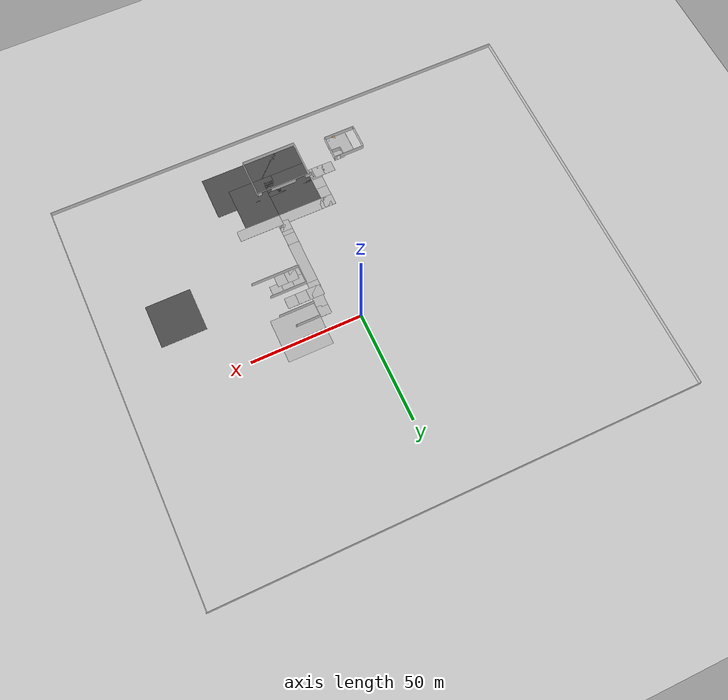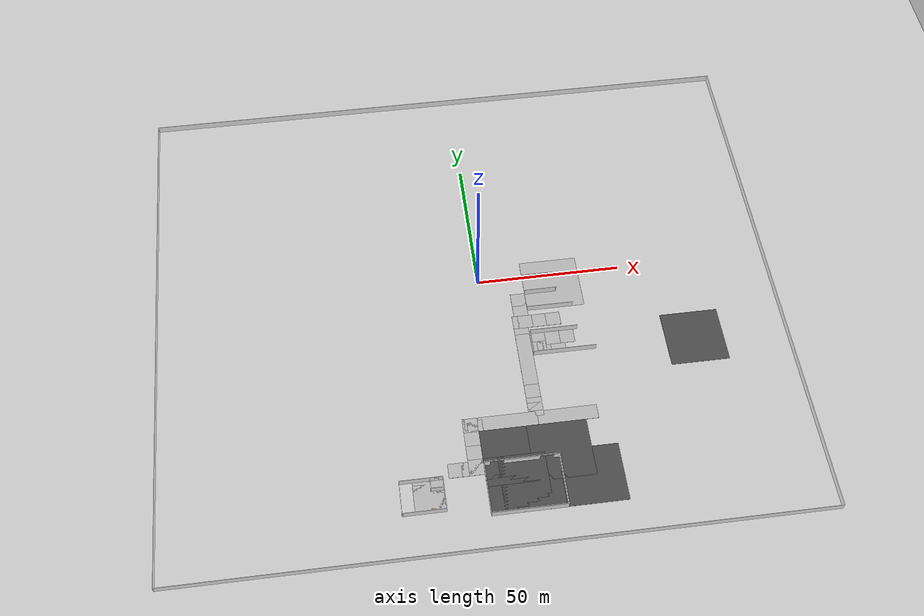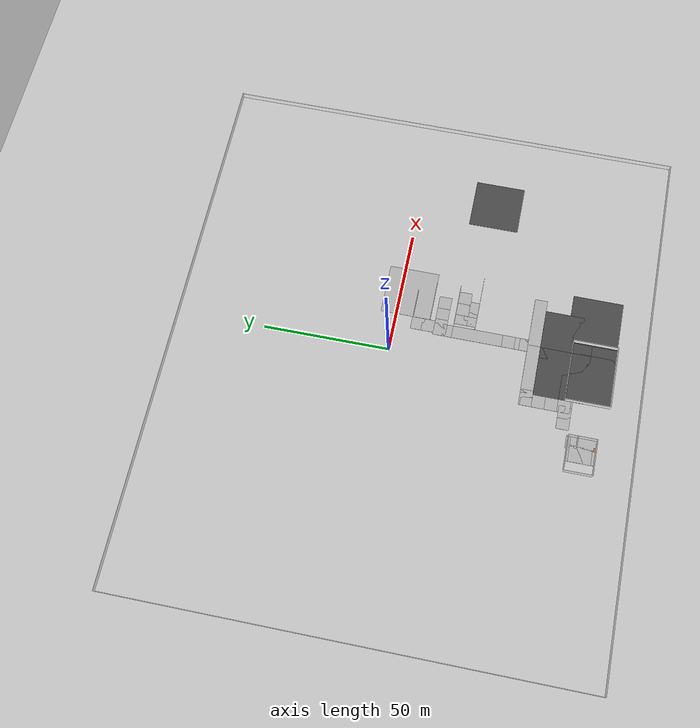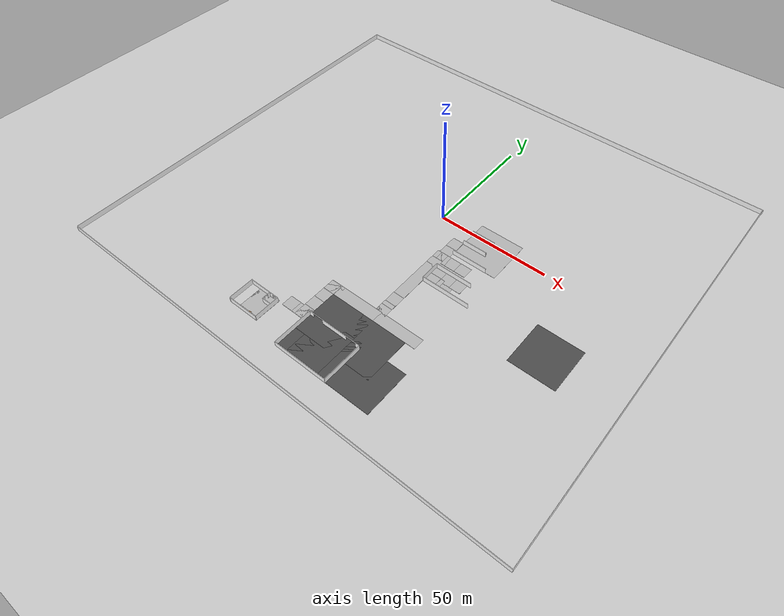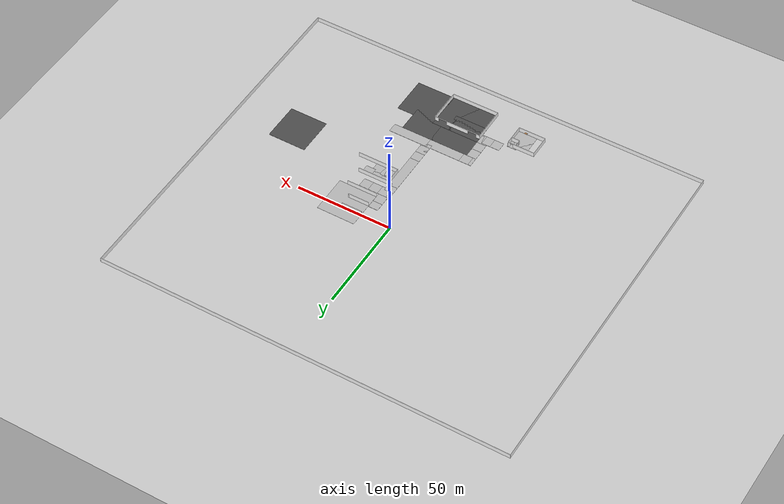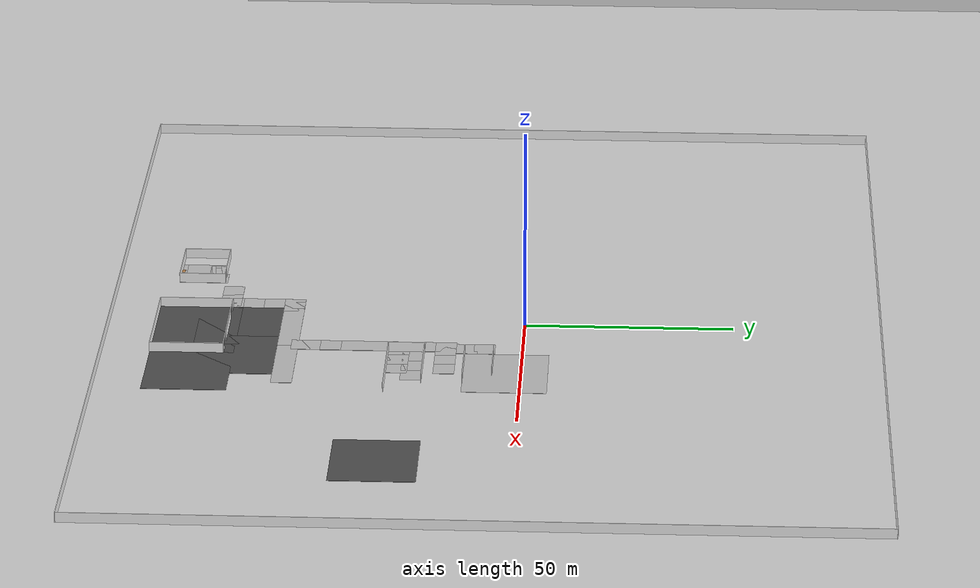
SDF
<sdf version="1.6">
 <world name="default">
  <model name="borders_0">
   <pose>-4.565 -7.31339 0 0 -0 0</pose>
   <link name="Wall_60">
    <collision name="Wall_60_Collision">
     <geometry><box><size>185.25 0.15 2.5</size></box></geometry>
     <pose>0 0 1.25 0 -0 0</pose>
    </collision>
    <visual name="Wall_60_Visual">
     <pose>0 0 1.25 0 -0 0</pose>
     <geometry><box><size>185.25 0.15 2.5</size></box></geometry>
     <material>
      <script>
       <uri>model://office_env/materials/scripts</uri>
       <uri>model://office_env/materials/textures</uri>
       <name>wall</name>
      </script>
      <ambient>1 1 1 1</ambient>
     </material>
    </visual>
    <pose>107.175 0 0 0 0 -1.5708</pose>
   </link>
   <link name="Wall_61">
    <collision name="Wall_61_Collision">
     <geometry><box><size>214.75 0.15 2.5</size></box></geometry>
     <pose>0 0 1.25 0 -0 0</pose>
    </collision>
    <visual name="Wall_61_Visual">
     <pose>0 0 1.25 0 -0 0</pose>
     <geometry><box><size>214.75 0.15 2.5</size></box></geometry>
     <material>
      <script>
       <uri>model://office_env/materials/scripts</uri>
       <uri>model://office_env/materials/textures</uri>
       <name>wall</name>
      </script>
      <ambient>1 1 1 1</ambient>
     </material>
    </visual>
    <pose>-0.124995 -92.55 0 0 -0 3.14159</pose>
   </link>
   <link name="Wall_62">
    <collision name="Wall_62_Collision">
     <geometry><box><size>185.25 0.15 2.5</size></box></geometry>
     <pose>0 0 1.25 0 -0 0</pose>
    </collision>
    <visual name="Wall_62_Visual">
     <pose>0 0 1.25 0 -0 0</pose>
     <geometry><box><size>185.25 0.15 2.5</size></box></geometry>
     <material>
      <script>
       <uri>model://office_env/materials/scripts</uri>
       <uri>model://office_env/materials/textures</uri>
       <name>wall</name>
      </script>
      <ambient>1 1 1 1</ambient>
     </material>
    </visual>
    <pose>-107.425 0 0 0 -0 1.5708</pose>
   </link>
   <link name="Wall_64">
    <collision name="Wall_64_Collision">
     <geometry><box><size>215 0.15 2.5</size></box></geometry>
     <pose>0 0 1.25 0 -0 0</pose>
    </collision>
    <visual name="Wall_64_Visual">
     <pose>0 0 1.25 0 -0 0</pose>
     <geometry><box><size>215 0.15 2.5</size></box></geometry>
     <material>
      <script>
       <uri>model://office_env/materials/scripts</uri>
       <uri>model://office_env/materials/textures</uri>
       <name>wall</name>
      </script>
      <ambient>1 1 1 1</ambient>
     </material>
    </visual>
    <pose>5e-06 92.55 0 0 -0 0</pose>
   </link>
   <static>1</static>
  </model>
  <model name="mainoffice">
   <pose>42.7555 15.4488 0 0 -0 0</pose>
   <link name="Wall_30">
    <collision name="Wall_30_Collision">
     <geometry><box><size>21.5 0.15 2.5</size></box></geometry>
     <pose>0 0 1.25 0 -0 0</pose>
    </collision>
    <visual name="Wall_30_Visual">
     <pose>0 0 1.25 0 -0 0</pose>
     <geometry><box><size>21.5 0.15 2.5</size></box></geometry>
     <material>
      <script>
       <uri>model://office_env/materials/scripts</uri>
       <uri>model://office_env/materials/textures</uri>
       <name>wall</name>
      </script>
      <ambient>1 1 1 1</ambient>
     </material>
    </visual>
    <pose>-17.1741 -47.325 0 0 -0 3.14159</pose>
   </link>
   <link name="Wall_31">
    <collision name="Wall_31_Collision">
     <geometry><box><size>8.75 0.15 2.5</size></box></geometry>
     <pose>0 0 1.25 0 -0 0</pose>
    </collision>
    <visual name="Wall_31_Visual">
     <pose>0 0 1.25 0 -0 0</pose>
     <geometry><box><size>8.75 0.15 2.5</size></box></geometry>
     <material>
      <script>
       <uri>model://office_env/materials/scripts</uri>
       <uri>model://office_env/materials/textures</uri>
       <name>wall</name>
      </script>
      <ambient>1 1 1 1</ambient>
     </material>
    </visual>
    <pose>-27.8491 -43.025 0 0 -0 1.5708</pose>
   </link>
   <link name="Wall_32">
    <collision name="Wall_32_Collision">
     <geometry><box><size>16.5 0.15 2.5</size></box></geometry>
     <pose>0 0 1.25 0 -0 0</pose>
    </collision>
    <visual name="Wall_32_Visual">
     <pose>0 0 1.25 0 -0 0</pose>
     <geometry><box><size>16.5 0.15 2.5</size></box></geometry>
     <material>
      <script>
       <uri>model://office_env/materials/scripts</uri>
       <uri>model://office_env/materials/textures</uri>
       <name>wall</name>
      </script>
      <ambient>1 1 1 1</ambient>
     </material>
    </visual>
    <pose>-19.6741 -38.725 0 0 -0 0</pose>
   </link>
   <link name="Wall_34">
    <collision name="Wall_34_Collision">
     <geometry><box><size>15.75 0.15 2.5</size></box></geometry>
     <pose>0 0 1.25 0 -0 0</pose>
    </collision>
    <visual name="Wall_34_Visual">
     <pose>0 0 1.25 0 -0 0</pose>
     <geometry><box><size>15.75 0.15 2.5</size></box></geometry>
     <material>
      <script>
       <uri>model://office_env/materials/scripts</uri>
       <uri>model://office_env/materials/textures</uri>
       <name>wall</name>
      </script>
      <ambient>1 1 1 1</ambient>
     </material>
    </visual>
    <pose>-19.2991 -29.125 0 0 -0 3.14159</pose>
   </link>
   <link name="Wall_61">
    <collision name="Wall_61_Collision">
     <geometry><box><size>0.5 0.15 2.5</size></box></geometry>
     <pose>0 0 1.25 0 -0 0</pose>
    </collision>
    <visual name="Wall_61_Visual">
     <pose>0 0 1.25 0 -0 0</pose>
     <geometry><box><size>0.5 0.15 2.5</size></box></geometry>
     <material>
      <script>
       <uri>model://office_env/materials/scripts</uri>
       <uri>model://office_env/materials/textures</uri>
       <name>wall</name>
      </script>
      <ambient>1 1 1 1</ambient>
     </material>
    </visual>
    <pose>-16.2741 -22.275 0 0 -0 3.14159</pose>
   </link>
   <link name="Wall_65">
    <collision name="Wall_65_Collision">
     <geometry><box><size>10.75 0.15 2.5</size></box></geometry>
     <pose>0 0 1.25 0 -0 0</pose>
    </collision>
    <visual name="Wall_65_Visual">
     <pose>0 0 1.25 0 -0 0</pose>
     <geometry><box><size>10.75 0.15 2.5</size></box></geometry>
     <material>
      <script>
       <uri>model://office_env/materials/scripts</uri>
       <uri>model://office_env/materials/textures</uri>
       <name>wall</name>
      </script>
      <ambient>1 1 1 1</ambient>
     </material>
    </visual>
    <pose>-21.7491 -22.275 0 0 -0 3.14159</pose>
   </link>
   <link name="Wall_69">
    <collision name="Wall_69_Collision">
     <geometry><box><size>10.75 0.15 2.5</size></box></geometry>
     <pose>0 0 1.25 0 -0 0</pose>
    </collision>
    <visual name="Wall_69_Visual">
     <pose>0 0 1.25 0 -0 0</pose>
     <geometry><box><size>10.75 0.15 2.5</size></box></geometry>
     <material>
      <script>
       <uri>model://office_env/materials/scripts</uri>
       <uri>model://office_env/materials/textures</uri>
       <name>wall</name>
      </script>
      <ambient>1 1 1 1</ambient>
     </material>
    </visual>
    <pose>-21.8396 -15.8176 0 0 -0 3.14159</pose>
   </link>
   <static>1</static>
  </model>
  <model name="office3_0">
   <pose>-28.0882 -79.6403 0 0 -0 0</pose>
   <link name="Wall_226">
    <collision name="Wall_226_Collision">
     <geometry><box><size>11.25 0.15 2.5</size></box></geometry>
     <pose>0 0 1.25 0 -0 0</pose>
    </collision>
    <visual name="Wall_226_Visual">
     <pose>0 0 1.25 0 -0 0</pose>
     <geometry><box><size>11.25 0.15 2.5</size></box></geometry>
     <material>
      <script>
       <uri>model://office_env/materials/scripts</uri>
       <uri>model://office_env/materials/textures</uri>
       <name>wall</name>
      </script>
      <ambient>1 1 1 1</ambient>
     </material>
    </visual>
    <pose>-7.05 0 0 0 -0 1.5708</pose>
   </link>
   <link name="Wall_228">
    <pose>0 5.55 0 0 -0 0</pose>
    <visual name="Wall_228_Visual_0">
     <pose>-1.41788 0 1.25 0 -0 0</pose>
     <geometry><box><size>11.4142 0.15 2.5</size></box></geometry>
     <material>
      <script>
       <uri>model://office_env/materials/scripts</uri>
       <uri>model://office_env/materials/textures</uri>
       <name>wall</name>
      </script>
      <ambient>1 1 1 1</ambient>
     </material>
    </visual>
    <collision name="Wall_228_Collision_0">
     <geometry><box><size>11.4142 0.15 2.5</size></box></geometry>
     <pose>-1.41788 0 1.25 0 -0 0</pose>
    </collision>
    <visual name="Wall_228_Visual_1">
     <pose>6.45712 0 1.25 0 -0 0</pose>
     <geometry><box><size>1.33575 0.15 2.5</size></box></geometry>
     <material>
      <script>
       <uri>model://office_env/materials/scripts</uri>
       <uri>model://office_env/materials/textures</uri>
       <name>wall</name>
      </script>
      <ambient>1 1 1 1</ambient>
     </material>
    </visual>
    <collision name="Wall_228_Collision_1">
     <geometry><box><size>1.33575 0.15 2.5</size></box></geometry>
     <pose>6.45712 0 1.25 0 -0 0</pose>
    </collision>
    <visual name="Wall_228_Visual_2">
     <pose>5.03925 0 2.25 0 -0 0</pose>
     <geometry><box><size>1.5 0.15 0.5</size></box></geometry>
     <material>
      <script>
       <uri>model://office_env/materials/scripts</uri>
       <uri>model://office_env/materials/textures</uri>
       <name>wall</name>
      </script>
      <ambient>1 1 1 1</ambient>
     </material>
    </visual>
    <collision name="Wall_228_Collision_2">
     <geometry><box><size>1.5 0.15 0.5</size></box></geometry>
     <pose>5.03925 0 2.25 0 -0 0</pose>
    </collision>
   </link>
   <link name="Wall_229">
    <collision name="Wall_229_Collision">
     <geometry><box><size>11.25 0.15 2.5</size></box></geometry>
     <pose>0 0 1.25 0 -0 0</pose>
    </collision>
    <visual name="Wall_229_Visual">
     <pose>0 0 1.25 0 -0 0</pose>
     <geometry><box><size>11.25 0.15 2.5</size></box></geometry>
     <material>
      <script>
       <uri>model://office_env/materials/scripts</uri>
       <uri>model://office_env/materials/textures</uri>
       <name>wall</name>
      </script>
      <ambient>1 1 1 1</ambient>
     </material>
    </visual>
    <pose>7.05 0 0 0 0 -1.5708</pose>
   </link>
   <link name="Wall_230">
    <collision name="Wall_230_Collision">
     <geometry><box><size>14 0.15 2.5</size></box></geometry>
     <pose>0 0 1.25 0 -0 0</pose>
    </collision>
    <visual name="Wall_230_Visual">
     <pose>0 0 1.25 0 -0 0</pose>
     <geometry><box><size>14 0.15 2.5</size></box></geometry>
     <material>
      <script>
       <uri>model://office_env/materials/scripts</uri>
       <uri>model://office_env/materials/textures</uri>
       <name>wall</name>
      </script>
      <ambient>1 1 1 1</ambient>
     </material>
    </visual>
    <pose>0.125 -5.55 0 0 -0 3.14159</pose>
   </link>
   <link name="Wall_231">
    <collision name="Wall_231_Collision">
     <geometry><box><size>0.4 0.15 2.5</size></box></geometry>
     <pose>0 0 1.25 0 -0 0</pose>
    </collision>
    <visual name="Wall_231_Visual">
     <pose>0 0 1.25 0 -0 0</pose>
     <geometry><box><size>0.4 0.15 2.5</size></box></geometry>
     <material>
      <script>
       <uri>model://office_env/materials/scripts</uri>
       <uri>model://office_env/materials/textures</uri>
       <name>wall</name>
      </script>
      <ambient>1 1 1 1</ambient>
     </material>
    </visual>
    <pose>-6.925 -5.55 0 0 -0 3.14159</pose>
   </link>
   <link name="Wall_235">
    <pose>2.82004 3.69571 0 0 0 -1.5708</pose>
    <visual name="Wall_235_Visual_0">
     <pose>-1.26863 0 1.25 0 -0 0</pose>
     <geometry><box><size>1.21274 0.15 2.5</size></box></geometry>
     <material>
      <script>
       <uri>model://office_env/materials/scripts</uri>
       <uri>model://office_env/materials/textures</uri>
       <name>wall</name>
      </script>
      <ambient>1 1 1 1</ambient>
     </material>
    </visual>
    <collision name="Wall_235_Collision_0">
     <geometry><box><size>1.21274 0.15 2.5</size></box></geometry>
     <pose>-1.26863 0 1.25 0 -0 0</pose>
    </collision>
    <visual name="Wall_235_Visual_1">
     <pose>1.35637 0 1.25 0 -0 0</pose>
     <geometry><box><size>1.03726 0.15 2.5</size></box></geometry>
     <material>
      <script>
       <uri>model://office_env/materials/scripts</uri>
       <uri>model://office_env/materials/textures</uri>
       <name>wall</name>
      </script>
      <ambient>1 1 1 1</ambient>
     </material>
    </visual>
    <collision name="Wall_235_Collision_1">
     <geometry><box><size>1.03726 0.15 2.5</size></box></geometry>
     <pose>1.35637 0 1.25 0 -0 0</pose>
    </collision>
    <visual name="Wall_235_Visual_2">
     <pose>0.087742 0 2.25 0 -0 0</pose>
     <geometry><box><size>1.5 0.15 0.5</size></box></geometry>
     <material>
      <script>
       <uri>model://office_env/materials/scripts</uri>
       <uri>model://office_env/materials/textures</uri>
       <name>wall</name>
      </script>
      <ambient>1 1 1 1</ambient>
     </material>
    </visual>
    <collision name="Wall_235_Collision_2">
     <geometry><box><size>1.5 0.15 0.5</size></box></geometry>
     <pose>0.087742 0 2.25 0 -0 0</pose>
    </collision>
   </link>
   <link name="Wall_236">
    <collision name="Wall_236_Collision">
     <geometry><box><size>4.25 0.15 2.5</size></box></geometry>
     <pose>0 0 1.25 0 -0 0</pose>
    </collision>
    <visual name="Wall_236_Visual">
     <pose>0 0 1.25 0 -0 0</pose>
     <geometry><box><size>4.25 0.15 2.5</size></box></geometry>
     <material>
      <script>
       <uri>model://office_env/materials/scripts</uri>
       <uri>model://office_env/materials/textures</uri>
       <name>wall</name>
      </script>
      <ambient>1 1 1 1</ambient>
     </material>
    </visual>
    <pose>4.87004 1.89571 0 0 -0 0</pose>
   </link>
   <static>1</static>
  </model>
  <model name="park_1">
   <pose>5 -79.6403 0 0 -0 0</pose>
   <link name="Wall_10">
    <collision name="Wall_10_Collision">
     <geometry><box><size>24.75 0.15 2.5</size></box></geometry>
     <pose>0 0 1.25 0 -0 0</pose>
    </collision>
    <visual name="Wall_10_Visual">
     <pose>0 0 1.25 0 -0 0</pose>
     <geometry><box><size>24.75 0.15 2.5</size></box></geometry>
     <material>
      <script>
       <uri>model://office_env/materials/scripts</uri>
       <uri>model://office_env/materials/textures</uri>
       <name>wall</name>
      </script>
      <ambient>1 1 1 1</ambient>
     </material>
    </visual>
    <pose>0 -8.8 0 0 -0 0</pose>
   </link>
   <link name="Wall_11">
    <collision name="Wall_11_Collision">
     <geometry><box><size>17.75 0.15 2.5</size></box></geometry>
     <pose>0 0 1.25 0 -0 0</pose>
    </collision>
    <visual name="Wall_11_Visual">
     <pose>0 0 1.25 0 -0 0</pose>
     <geometry><box><size>17.75 0.15 2.5</size></box></geometry>
     <material>
      <script>
       <uri>model://office_env/materials/scripts</uri>
       <uri>model://office_env/materials/textures</uri>
       <name>wall</name>
      </script>
      <ambient>1 1 1 1</ambient>
     </material>
    </visual>
    <pose>12.3 0 0 0 -0 1.5708</pose>
   </link>
   <link name="Wall_12">
    <pose>0 8.8 0 0 -0 3.14159</pose>
    <visual name="Wall_12_Visual_0">
     <pose>-11.3671 0 1.25 0 -0 0</pose>
     <geometry><box><size>2.0158 0.15 2.5</size></box></geometry>
     <material>
      <script>
       <uri>model://office_env/materials/scripts</uri>
       <uri>model://office_env/materials/textures</uri>
       <name>wall</name>
      </script>
      <ambient>1 1 1 1</ambient>
     </material>
    </visual>
    <collision name="Wall_12_Collision_0">
     <geometry><box><size>2.0158 0.15 2.5</size></box></geometry>
     <pose>-11.3671 0 1.25 0 -0 0</pose>
    </collision>
    <visual name="Wall_12_Visual_1">
     <pose>-0.005473 0 1.25 0 -0 0</pose>
     <geometry><box><size>11.7075 0.15 2.5</size></box></geometry>
     <material>
      <script>
       <uri>model://office_env/materials/scripts</uri>
       <uri>model://office_env/materials/textures</uri>
       <name>wall</name>
      </script>
      <ambient>1 1 1 1</ambient>
     </material>
    </visual>
    <collision name="Wall_12_Collision_1">
     <geometry><box><size>11.7075 0.15 2.5</size></box></geometry>
     <pose>-0.005473 0 1.25 0 -0 0</pose>
    </collision>
    <visual name="Wall_12_Visual_2">
     <pose>11.3616 0 1.25 0 -0 0</pose>
     <geometry><box><size>2.02674 0.15 2.5</size></box></geometry>
     <material>
      <script>
       <uri>model://office_env/materials/scripts</uri>
       <uri>model://office_env/materials/textures</uri>
       <name>wall</name>
      </script>
      <ambient>1 1 1 1</ambient>
     </material>
    </visual>
    <collision name="Wall_12_Collision_2">
     <geometry><box><size>2.02674 0.15 2.5</size></box></geometry>
     <pose>11.3616 0 1.25 0 -0 0</pose>
    </collision>
    <visual name="Wall_12_Visual_3">
     <pose>-8.1092 0 2.3 0 -0 0</pose>
     <geometry><box><size>4.5 0.15 0.4</size></box></geometry>
     <material>
      <script>
       <uri>model://office_env/materials/scripts</uri>
       <uri>model://office_env/materials/textures</uri>
       <name>wall</name>
      </script>
      <ambient>1 1 1 1</ambient>
     </material>
    </visual>
    <collision name="Wall_12_Collision_3">
     <geometry><box><size>4.5 0.15 0.4</size></box></geometry>
     <pose>-8.1092 0 2.3 0 -0 0</pose>
    </collision>
    <visual name="Wall_12_Visual_4">
     <pose>8.09826 0 2.3 0 -0 0</pose>
     <geometry><box><size>4.5 0.15 0.4</size></box></geometry>
     <material>
      <script>
       <uri>model://office_env/materials/scripts</uri>
       <uri>model://office_env/materials/textures</uri>
       <name>wall</name>
      </script>
      <ambient>1 1 1 1</ambient>
     </material>
    </visual>
    <collision name="Wall_12_Collision_4">
     <geometry><box><size>4.5 0.15 0.4</size></box></geometry>
     <pose>8.09826 0 2.3 0 -0 0</pose>
    </collision>
   </link>
   <link name="Wall_4">
    <collision name="Wall_4_Collision">
     <geometry><box><size>17.75 0.15 2.5</size></box></geometry>
     <pose>0 0 1.25 0 -0 0</pose>
    </collision>
    <visual name="Wall_4_Visual">
     <pose>0 0 1.25 0 -0 0</pose>
     <geometry><box><size>17.75 0.15 2.5</size></box></geometry>
     <material>
      <script>
       <uri>model://office_env/materials/scripts</uri>
       <uri>model://office_env/materials/textures</uri>
       <name>wall</name>
      </script>
      <ambient>1 1 1 1</ambient>
     </material>
    </visual>
    <pose>-12.3 0 0 0 0 -1.5708</pose>
   </link>
   <static>1</static>
  </model>
  <model name="asphalt_plane">
   <static>1</static>
   <link name="link">
    <collision name="collision"><geometry><box><size>20 20 0.1</size></box></geometry></collision>
    <visual name="visual">
     <cast_shadows>0</cast_shadows>
     <geometry><box><size>20 20 0.1</size></box></geometry>
     <material>
      <script>
       <uri>model://asphalt_plane/materials/scripts</uri>
       <uri>model://asphalt_plane/materials/textures</uri>
       <name>vrc/asphalt</name>
      </script>
     </material>
    </visual>
   </link>
   <pose>70.7475 -31.5972 0 0 -0 0</pose>
  </model>
  <model name="asphalt_plane_21">
   <static>1</static>
   <link name="link">
    <collision name="collision"><geometry><box><size>20 20 0.1</size></box></geometry></collision>
    <visual name="visual">
     <cast_shadows>0</cast_shadows>
     <geometry><box><size>20 20 0.1</size></box></geometry>
     <material>
      <script>
       <uri>model://asphalt_plane/materials/scripts</uri>
       <uri>model://asphalt_plane/materials/textures</uri>
       <name>vrc/asphalt</name>
      </script>
     </material>
    </visual>
   </link>
   <pose>7.25861 -78.4975 0 0 -0 0</pose>
  </model>
  <model name="asphalt_plane_22">
   <static>1</static>
   <link name="link">
    <collision name="collision"><geometry><box><size>20 20 0.1</size></box></geometry></collision>
    <visual name="visual">
     <cast_shadows>0</cast_shadows>
     <geometry><box><size>20 20 0.1</size></box></geometry>
     <material>
      <script>
       <uri>model://asphalt_plane/materials/scripts</uri>
       <uri>model://asphalt_plane/materials/textures</uri>
       <name>vrc/asphalt</name>
      </script>
     </material>
    </visual>
   </link>
   <pose>2.73538 -78.4496 0 0 -0 0</pose>
  </model>
  <model name="asphalt_plane_23">
   <static>1</static>
   <link name="link">
    <collision name="collision"><geometry><box><size>20 20 0.1</size></box></geometry></collision>
    <visual name="visual">
     <cast_shadows>0</cast_shadows>
     <geometry><box><size>20 20 0.1</size></box></geometry>
     <material>
      <script>
       <uri>model://asphalt_plane/materials/scripts</uri>
       <uri>model://asphalt_plane/materials/textures</uri>
       <name>vrc/asphalt</name>
      </script>
     </material>
    </visual>
   </link>
   <pose>2.60492 -68.4597 0 0 -0 0</pose>
  </model>
  <model name="asphalt_plane_24">
   <static>1</static>
   <link name="link">
    <collision name="collision"><geometry><box><size>20 20 0.1</size></box></geometry></collision>
    <visual name="visual">
     <cast_shadows>0</cast_shadows>
     <geometry><box><size>20 20 0.1</size></box></geometry>
     <material>
      <script>
       <uri>model://asphalt_plane/materials/scripts</uri>
       <uri>model://asphalt_plane/materials/textures</uri>
       <name>vrc/asphalt</name>
      </script>
     </material>
    </visual>
   </link>
   <pose>18.2239 -68.4616 0 0 -0 0</pose>
  </model>
  <model name="asphalt_plane_27">
   <static>1</static>
   <link name="link">
    <collision name="collision"><geometry><box><size>20 20 0.1</size></box></geometry></collision>
    <visual name="visual">
     <cast_shadows>0</cast_shadows>
     <geometry><box><size>20 20 0.1</size></box></geometry>
     <material>
      <script>
       <uri>model://asphalt_plane/materials/scripts</uri>
       <uri>model://asphalt_plane/materials/textures</uri>
       <name>vrc/asphalt</name>
      </script>
     </material>
    </visual>
   </link>
   <pose>26.9397 -78.4242 0 0 -0 0</pose>
  </model>
  <model name="table_6">
   <static>0</static>
   <link name="link">
    <collision name="surface">
     <pose>0 0 1 0 -0 0</pose>
     <geometry><box><size>1.5 0.8 0.03</size></box></geometry>
     <surface><friction><ode><mu>0.6</mu><mu2>0.6</mu2></ode></friction></surface>
    </collision>
    <visual name="visual1">
     <pose>0 0 1 0 -0 0</pose>
     <geometry><box><size>1.4 0.8 0.04</size></box></geometry>
     <material>
      <script><uri>file://media/materials/scripts/gazebo.material</uri><name>Gazebo/Wood</name></script>
     </material>
    </visual>
    <collision name="front_left_leg">
     <pose>0.68 0.38 0.5 0 -0 0</pose>
     <geometry><cylinder><radius>0.02</radius><length>1</length></cylinder></geometry>
    </collision>
    <visual name="front_left_leg">
     <pose>0.68 0.38 0.5 0 -0 0</pose>
     <geometry><cylinder><radius>0.02</radius><length>1</length></cylinder></geometry>
     <material>
      <script>
       <uri>model://office_env/materials/scripts</uri>
       <uri>model://office_env/materials/textures</uri>
       <name>wall</name>
      </script>
     </material>
    </visual>
    <collision name="front_right_leg">
     <pose>0.68 -0.38 0.5 0 -0 0</pose>
     <geometry><cylinder><radius>0.02</radius><length>1</length></cylinder></geometry>
    </collision>
    <visual name="front_right_leg">
     <pose>0.68 -0.38 0.5 0 -0 0</pose>
     <geometry><cylinder><radius>0.02</radius><length>1</length></cylinder></geometry>
     <material>
      <script>
       <uri>model://office_env/materials/scripts</uri>
       <uri>model://office_env/materials/textures</uri>
       <name>wall</name>
      </script>
     </material>
    </visual>
    <collision name="back_right_leg">
     <pose>-0.68 -0.38 0.5 0 -0 0</pose>
     <geometry><cylinder><radius>0.02</radius><length>1</length></cylinder></geometry>
    </collision>
    <visual name="back_right_leg">
     <pose>-0.68 -0.38 0.5 0 -0 0</pose>
     <geometry><cylinder><radius>0.02</radius><length>1</length></cylinder></geometry>
     <material>
      <script>
       <uri>model://office_env/materials/scripts</uri>
       <uri>model://office_env/materials/textures</uri>
       <name>wall</name>
      </script>
     </material>
    </visual>
    <collision name="back_left_leg">
     <pose>-0.68 0.38 0.5 0 -0 0</pose>
     <geometry><cylinder><radius>0.02</radius><length>1</length></cylinder></geometry>
    </collision>
    <visual name="back_left_leg">
     <pose>-0.68 0.38 0.5 0 -0 0</pose>
     <geometry><cylinder><radius>0.02</radius><length>1</length></cylinder></geometry>
     <material>
      <script>
       <uri>model://office_env/materials/scripts</uri>
       <uri>model://office_env/materials/textures</uri>
       <name>wall</name>
      </script>
     </material>
    </visual>
    <inertial>
     <inertia><ixx>1</ixx><ixy>0</ixy><ixz>0</ixz><iyy>1</iyy><iyz>0</iyz><izz>1</izz></inertia>
     <mass>1</mass>
    </inertial>
   </link>
   <pose>-25.0742 -84.5962 0.034992 1e-06 -2e-06 4e-06</pose>
  </model>
  <model name="Floor_15">
   <link name="main">
    <pose>0 0 0.01 0 -0 0</pose>
    <collision name="main_Collision"><geometry><box><size>10 10 0.05</size></box></geometry></collision>
    <visual name="main_Visual">
     <geometry><box><size>10 10 0.05</size></box></geometry>
     <material>
      <script>
       <uri>model://Floor_small/materials/scripts</uri>
       <uri>model://Floor_small/materials/textures</uri>
       <name>floor</name>
      </script>
     </material>
    </visual>
   </link>
   <static>1</static>
   <pose>-25.9365 -80.2194 0 0 -0 0</pose>
  </model>
  <model name="Floor_16">
   <link name="main">
    <pose>0 0 0.01 0 -0 0</pose>
    <collision name="main_Collision"><geometry><box><size>10 10 0.05</size></box></geometry></collision>
    <visual name="main_Visual">
     <geometry><box><size>10 10 0.05</size></box></geometry>
     <material>
      <script>
       <uri>model://Floor_small/materials/scripts</uri>
       <uri>model://Floor_small/materials/textures</uri>
       <name>floor</name>
      </script>
     </material>
    </visual>
   </link>
   <static>1</static>
   <pose>-25.9898 -79.0539 0 0 -0 0</pose>
  </model>
  <model name="Floor_38">
   <link name="main">
    <pose>0 0 0.01 0 -0 0</pose>
    <collision name="main_Collision"><geometry><box><size>20 20 0.05</size></box></geometry></collision>
    <visual name="main_Visual">
     <geometry><box><size>20 20 0.05</size></box></geometry>
     <material>
      <script>
       <uri>model://Floor_medium/materials/scripts</uri>
       <uri>model://Floor_medium/materials/textures</uri>
       <name>floor</name>
      </script>
     </material>
    </visual>
   </link>
   <static>1</static>
   <pose>25.6683 -3.68274 0 0 -0 0</pose>
  </model>
  <model name="Floor_40">
   <link name="main">
    <pose>0 0 0.01 0 -0 0</pose>
    <collision name="main_Collision"><geometry><box><size>5 5 0.05</size></box></geometry></collision>
    <visual name="main_Visual">
     <geometry><box><size>5 5 0.05</size></box></geometry>
     <material>
      <script>
       <uri>model://Floor_verysmall/materials/scripts</uri>
       <uri>model://Floor_verysmall/materials/textures</uri>
       <name>floor</name>
      </script>
     </material>
    </visual>
   </link>
   <static>1</static>
   <pose>17.456 -25.8689 0 0 -0 0</pose>
  </model>
  <model name="Floor_41">
   <link name="main">
    <pose>0 0 0.01 0 -0 0</pose>
    <collision name="main_Collision"><geometry><box><size>5 5 0.05</size></box></geometry></collision>
    <visual name="main_Visual">
     <geometry><box><size>5 5 0.05</size></box></geometry>
     <material>
      <script>
       <uri>model://Floor_verysmall/materials/scripts</uri>
       <uri>model://Floor_verysmall/materials/textures</uri>
       <name>floor</name>
      </script>
     </material>
    </visual>
   </link>
   <static>1</static>
   <pose>22.414 -25.8333 0 0 -0 0</pose>
  </model>
  <model name="Floor_42">
   <link name="main">
    <pose>0 0 0.01 0 -0 0</pose>
    <collision name="main_Collision"><geometry><box><size>5 5 0.05</size></box></geometry></collision>
    <visual name="main_Visual">
     <geometry><box><size>5 5 0.05</size></box></geometry>
     <material>
      <script>
       <uri>model://Floor_verysmall/materials/scripts</uri>
       <uri>model://Floor_verysmall/materials/textures</uri>
       <name>floor</name>
      </script>
     </material>
    </visual>
   </link>
   <static>1</static>
   <pose>27.3802 -25.8391 0 0 -0 0</pose>
  </model>
  <model name="Floor_47">
   <link name="main">
    <pose>0 0 0.01 0 -0 0</pose>
    <collision name="main_Collision"><geometry><box><size>5 5 0.05</size></box></geometry></collision>
    <visual name="main_Visual">
     <geometry><box><size>5 5 0.05</size></box></geometry>
     <material>
      <script>
       <uri>model://Floor_verysmall/materials/scripts</uri>
       <uri>model://Floor_verysmall/materials/textures</uri>
       <name>floor</name>
      </script>
     </material>
    </visual>
   </link>
   <static>1</static>
   <pose>23.8279 -29.3586 0 0 -0 0</pose>
  </model>
  <model name="Floor_48">
   <link name="main">
    <pose>0 0 0.01 0 -0 0</pose>
    <collision name="main_Collision"><geometry><box><size>5 5 0.05</size></box></geometry></collision>
    <visual name="main_Visual">
     <geometry><box><size>5 5 0.05</size></box></geometry>
     <material>
      <script>
       <uri>model://Floor_verysmall/materials/scripts</uri>
       <uri>model://Floor_verysmall/materials/textures</uri>
       <name>floor</name>
      </script>
     </material>
    </visual>
   </link>
   <static>1</static>
   <pose>19.2288 -29.3542 0 0 -0 0</pose>
  </model>
  <model name="Floor_49">
   <link name="main">
    <pose>0 0 0.01 0 -0 0</pose>
    <collision name="main_Collision"><geometry><box><size>5 5 0.05</size></box></geometry></collision>
    <visual name="main_Visual">
     <geometry><box><size>5 5 0.05</size></box></geometry>
     <material>
      <script>
       <uri>model://Floor_verysmall/materials/scripts</uri>
       <uri>model://Floor_verysmall/materials/textures</uri>
       <name>floor</name>
      </script>
     </material>
    </visual>
   </link>
   <static>1</static>
   <pose>17.312 -29.2833 0 0 -0 0</pose>
  </model>
  <model name="my_ground_plane">
   <static>1</static>
   <link name="link">
    <collision name="collision">
     <geometry><plane><normal>0 0 1</normal><size>300 300</size></plane></geometry>
     <surface><friction><ode><mu>100</mu><mu2>50</mu2></ode></friction></surface>
    </collision>
    <visual name="visual">
     <cast_shadows>0</cast_shadows>
     <geometry><plane><normal>0 0 1</normal><size>300 300</size></plane></geometry>
     <material>
      <script>
       <uri>model://grass_1/materials/scripts/my_ground_plane.material</uri>
       <name>MyGroundPlane/Image</name>
      </script>
     </material>
    </visual>
   </link>
   <pose>-0.163313 -0.271667 0 0 -0 0</pose>
  </model>
  <model name="outdoor_plane_0">
   <static>1</static>
   <link name="link">
    <collision name="collision"><geometry><box><size>5 5 0.1</size></box></geometry></collision>
    <visual name="visual">
     <cast_shadows>0</cast_shadows>
     <geometry><box><size>5 5 0.1</size></box></geometry>
     <material>
      <script>
       <uri>model://outdoor_planesmall/materials/scripts</uri>
       <uri>model://outdoor_planesmall/materials/textures</uri>
       <name>outdss/Image</name>
      </script>
     </material>
    </visual>
   </link>
   <pose>-16.5068 -71.5163 0 0 -0 0</pose>
  </model>
  <model name="outdoor_plane_1">
   <static>1</static>
   <link name="link">
    <collision name="collision"><geometry><box><size>5 5 0.1</size></box></geometry></collision>
    <visual name="visual">
     <cast_shadows>0</cast_shadows>
     <geometry><box><size>5 5 0.1</size></box></geometry>
     <material>
      <script>
       <uri>model://outdoor_planesmall/materials/scripts</uri>
       <uri>model://outdoor_planesmall/materials/textures</uri>
       <name>outdss/Image</name>
      </script>
     </material>
    </visual>
   </link>
   <pose>-12.1261 -71.5221 0 0 -0 0</pose>
  </model>
  <model name="outdoor_plane_clone_clone_clone">
   <static>1</static>
   <link name="link">
    <collision name="collision"><geometry><box><size>5 20 0.1</size></box></geometry></collision>
    <visual name="visual">
     <cast_shadows>0</cast_shadows>
     <geometry><box><size>5 20 0.1</size></box></geometry>
     <material>
      <script>
       <uri>model://outdoor_plane/materials/scripts</uri>
       <uri>model://outdoor_plane/materials/textures</uri>
       <name>outds/Image</name>
      </script>
     </material>
    </visual>
   </link>
   <pose>2.74248 -55.9539 0 0 -0 1.57079</pose>
  </model>
  <model name="outdoor_plane_clone_clone_clone_clone">
   <static>1</static>
   <link name="link">
    <collision name="collision"><geometry><box><size>5 20 0.1</size></box></geometry></collision>
    <visual name="visual">
     <cast_shadows>0</cast_shadows>
     <geometry><box><size>5 20 0.1</size></box></geometry>
     <material>
      <script>
       <uri>model://outdoor_plane/materials/scripts</uri>
       <uri>model://outdoor_plane/materials/textures</uri>
       <name>outds/Image</name>
      </script>
     </material>
    </visual>
   </link>
   <pose>22.5169 -55.9462 0 0 -0 1.57079</pose>
  </model>
  <model name="outdoor_plane_3">
   <static>1</static>
   <link name="link">
    <collision name="collision"><geometry><box><size>5 5 0.1</size></box></geometry></collision>
    <visual name="visual">
     <cast_shadows>0</cast_shadows>
     <geometry><box><size>5 5 0.1</size></box></geometry>
     <material>
      <script>
       <uri>model://outdoor_planesmall/materials/scripts</uri>
       <uri>model://outdoor_planesmall/materials/textures</uri>
       <name>outdss/Image</name>
      </script>
     </material>
    </visual>
   </link>
   <pose>-9.89426 -56.0168 0 0 -0 0</pose>
  </model>
  <model name="outdoor_plane_4">
   <static>1</static>
   <link name="link">
    <collision name="collision"><geometry><box><size>5 5 0.1</size></box></geometry></collision>
    <visual name="visual">
     <cast_shadows>0</cast_shadows>
     <geometry><box><size>5 5 0.1</size></box></geometry>
     <material>
      <script>
       <uri>model://outdoor_planesmall/materials/scripts</uri>
       <uri>model://outdoor_planesmall/materials/textures</uri>
       <name>outdss/Image</name>
      </script>
     </material>
    </visual>
   </link>
   <pose>-9.89523 -65.9605 0 0 -0 0</pose>
  </model>
  <model name="outdoor_plane_5">
   <static>1</static>
   <link name="link">
    <collision name="collision"><geometry><box><size>5 5 0.1</size></box></geometry></collision>
    <visual name="visual">
     <cast_shadows>0</cast_shadows>
     <geometry><box><size>5 5 0.1</size></box></geometry>
     <material>
      <script>
       <uri>model://outdoor_planesmall/materials/scripts</uri>
       <uri>model://outdoor_planesmall/materials/textures</uri>
       <name>outdss/Image</name>
      </script>
     </material>
    </visual>
   </link>
   <pose>-9.89906 -60.9977 0 0 -0 0</pose>
  </model>
  <model name="outdoor_plane_6">
   <static>1</static>
   <link name="link">
    <collision name="collision"><geometry><box><size>5 5 0.1</size></box></geometry></collision>
    <visual name="visual">
     <cast_shadows>0</cast_shadows>
     <geometry><box><size>5 5 0.1</size></box></geometry>
     <material>
      <script>
       <uri>model://outdoor_planesmall/materials/scripts</uri>
       <uri>model://outdoor_planesmall/materials/textures</uri>
       <name>outdss/Image</name>
      </script>
     </material>
    </visual>
   </link>
   <pose>-9.89735 -70.918 0 0 -0 0</pose>
  </model>
  <model name="outdoor_plane_7">
   <static>1</static>
   <link name="link">
    <collision name="collision"><geometry><box><size>5 5 0.1</size></box></geometry></collision>
    <visual name="visual">
     <cast_shadows>0</cast_shadows>
     <geometry><box><size>5 5 0.1</size></box></geometry>
     <material>
      <script>
       <uri>model://outdoor_planesmall/materials/scripts</uri>
       <uri>model://outdoor_planesmall/materials/textures</uri>
       <name>outdss/Image</name>
      </script>
     </material>
    </visual>
   </link>
   <pose>-9.8805 -71.5289 0 0 -0 0</pose>
  </model>
  <model name="outdoor_plane_21">
   <static>1</static>
   <link name="link">
    <collision name="collision"><geometry><box><size>5 20 0.1</size></box></geometry></collision>
    <visual name="visual">
     <cast_shadows>0</cast_shadows>
     <geometry><box><size>5 20 0.1</size></box></geometry>
     <material>
      <script>
       <uri>model://outdoor_plane/materials/scripts</uri>
       <uri>model://outdoor_plane/materials/textures</uri>
       <name>outds/Image</name>
      </script>
     </material>
    </visual>
   </link>
   <pose>12.3123 -33.2125 0 0 -0 0</pose>
  </model>
  <model name="outdoor_plane_22">
   <static>1</static>
   <link name="link">
    <collision name="collision"><geometry><box><size>5 5 0.1</size></box></geometry></collision>
    <visual name="visual">
     <cast_shadows>0</cast_shadows>
     <geometry><box><size>5 5 0.1</size></box></geometry>
     <material>
      <script>
       <uri>model://outdoor_planesmall/materials/scripts</uri>
       <uri>model://outdoor_planesmall/materials/textures</uri>
       <name>outdss/Image</name>
      </script>
     </material>
    </visual>
   </link>
   <pose>12.3093 -45.7103 0 0 -0 0</pose>
  </model>
  <model name="outdoor_plane_23">
   <static>1</static>
   <link name="link">
    <collision name="collision"><geometry><box><size>5 5 0.1</size></box></geometry></collision>
    <visual name="visual">
     <cast_shadows>0</cast_shadows>
     <geometry><box><size>5 5 0.1</size></box></geometry>
     <material>
      <script>
       <uri>model://outdoor_planesmall/materials/scripts</uri>
       <uri>model://outdoor_planesmall/materials/textures</uri>
       <name>outdss/Image</name>
      </script>
     </material>
    </visual>
   </link>
   <pose>12.2996 -50.6831 0 0 -0 0</pose>
  </model>
  <model name="outdoor_plane_24">
   <static>1</static>
   <link name="link">
    <collision name="collision"><geometry><box><size>5 5 0.1</size></box></geometry></collision>
    <visual name="visual">
     <cast_shadows>0</cast_shadows>
     <geometry><box><size>5 5 0.1</size></box></geometry>
     <material>
      <script>
       <uri>model://outdoor_planesmall/materials/scripts</uri>
       <uri>model://outdoor_planesmall/materials/textures</uri>
       <name>outdss/Image</name>
      </script>
     </material>
    </visual>
   </link>
   <pose>12.3029 -52.649 0 0 -0 0</pose>
  </model>
  <model name="outdoor_plane_26">
   <static>1</static>
   <link name="link">
    <collision name="collision"><geometry><box><size>5 5 0.1</size></box></geometry></collision>
    <visual name="visual">
     <cast_shadows>0</cast_shadows>
     <geometry><box><size>5 5 0.1</size></box></geometry>
     <material>
      <script>
       <uri>model://outdoor_planesmall/materials/scripts</uri>
       <uri>model://outdoor_planesmall/materials/textures</uri>
       <name>outdss/Image</name>
      </script>
     </material>
    </visual>
   </link>
   <pose>23.8351 -18.2234 0 0 -0 0</pose>
  </model>
  <model name="outdoor_plane_27">
   <static>1</static>
   <link name="link">
    <collision name="collision"><geometry><box><size>5 5 0.1</size></box></geometry></collision>
    <visual name="visual">
     <cast_shadows>0</cast_shadows>
     <geometry><box><size>5 5 0.1</size></box></geometry>
     <material>
      <script>
       <uri>model://outdoor_planesmall/materials/scripts</uri>
       <uri>model://outdoor_planesmall/materials/textures</uri>
       <name>outdss/Image</name>
      </script>
     </material>
    </visual>
   </link>
   <pose>18.8599 -18.2392 0 0 -0 0</pose>
  </model>
  <model name="outdoor_plane_28">
   <static>1</static>
   <link name="link">
    <collision name="collision"><geometry><box><size>5 5 0.1</size></box></geometry></collision>
    <visual name="visual">
     <cast_shadows>0</cast_shadows>
     <geometry><box><size>5 5 0.1</size></box></geometry>
     <material>
      <script>
       <uri>model://outdoor_planesmall/materials/scripts</uri>
       <uri>model://outdoor_planesmall/materials/textures</uri>
       <name>outdss/Image</name>
      </script>
     </material>
    </visual>
   </link>
   <pose>14.1258 -18.2496 0 0 -0 0</pose>
  </model>
  <model name="outdoor_plane_29">
   <static>1</static>
   <link name="link">
    <collision name="collision"><geometry><box><size>5 5 0.1</size></box></geometry></collision>
    <visual name="visual">
     <cast_shadows>0</cast_shadows>
     <geometry><box><size>5 5 0.1</size></box></geometry>
     <material>
      <script>
       <uri>model://outdoor_planesmall/materials/scripts</uri>
       <uri>model://outdoor_planesmall/materials/textures</uri>
       <name>outdss/Image</name>
      </script>
     </material>
    </visual>
   </link>
   <pose>12.3182 -18.2438 0 0 -0 0</pose>
  </model>
  <model name="outdoor_plane_30">
   <static>1</static>
   <link name="link">
    <collision name="collision"><geometry><box><size>5 5 0.1</size></box></geometry></collision>
    <visual name="visual">
     <cast_shadows>0</cast_shadows>
     <geometry><box><size>5 5 0.1</size></box></geometry>
     <material>
      <script>
       <uri>model://outdoor_planesmall/materials/scripts</uri>
       <uri>model://outdoor_planesmall/materials/textures</uri>
       <name>outdss/Image</name>
      </script>
     </material>
    </visual>
   </link>
   <pose>12.311 -21.9753 0 0 -0 0</pose>
  </model>
  <model name="outdoor_plane_31">
   <static>1</static>
   <link name="link">
    <collision name="collision"><geometry><box><size>5 5 0.1</size></box></geometry></collision>
    <visual name="visual">
     <cast_shadows>0</cast_shadows>
     <geometry><box><size>5 5 0.1</size></box></geometry>
     <material>
      <script>
       <uri>model://outdoor_planesmall/materials/scripts</uri>
       <uri>model://outdoor_planesmall/materials/textures</uri>
       <name>outdss/Image</name>
      </script>
     </material>
    </visual>
   </link>
   <pose>13.0578 -9.06664 0 0 -0 0</pose>
  </model>
  <model name="outdoor_plane_32">
   <static>1</static>
   <link name="link">
    <collision name="collision"><geometry><box><size>5 5 0.1</size></box></geometry></collision>
    <visual name="visual">
     <cast_shadows>0</cast_shadows>
     <geometry><box><size>5 5 0.1</size></box></geometry>
     <material>
      <script>
       <uri>model://outdoor_planesmall/materials/scripts</uri>
       <uri>model://outdoor_planesmall/materials/textures</uri>
       <name>outdss/Image</name>
      </script>
     </material>
    </visual>
   </link>
   <pose>13.0735 -13.2628 0 0 -0 0</pose>
  </model>
  <model name="Floor_1">
   <link name="main">
    <pose>0 0 0.01 0 -0 0</pose>
    <collision name="main_Collision"><geometry><box><size>5 5 0.05</size></box></geometry></collision>
    <visual name="main_Visual">
     <geometry><box><size>5 5 0.05</size></box></geometry>
     <material>
      <script>
       <uri>model://Floor_verysmall/materials/scripts</uri>
       <uri>model://Floor_verysmall/materials/textures</uri>
       <name>floor</name>
      </script>
     </material>
    </visual>
   </link>
   <static>1</static>
   <pose>-23.3933 -75.9933 0 0 -0 0</pose>
  </model>
  <model name="outdoor_plane">
   <static>1</static>
   <link name="link">
    <collision name="collision"><geometry><box><size>5 5 0.1</size></box></geometry></collision>
    <visual name="visual">
     <cast_shadows>0</cast_shadows>
     <geometry><box><size>5 5 0.1</size></box></geometry>
     <material>
      <script>
       <uri>model://outdoor_planesmall/materials/scripts</uri>
       <uri>model://outdoor_planesmall/materials/textures</uri>
       <name>outdss/Image</name>
      </script>
     </material>
    </visual>
   </link>
   <pose>-8.37357 -55.9664 0 0 -0 0</pose>
  </model>
  <model name="outdoor_plane_2">
   <static>1</static>
   <link name="link">
    <collision name="collision"><geometry><box><size>5 5 0.1</size></box></geometry></collision>
    <visual name="visual">
     <cast_shadows>0</cast_shadows>
     <geometry><box><size>5 5 0.1</size></box></geometry>
     <material>
      <script>
       <uri>model://outdoor_planesmall/materials/scripts</uri>
       <uri>model://outdoor_planesmall/materials/textures</uri>
       <name>outdss/Image</name>
      </script>
     </material>
    </visual>
   </link>
   <pose>-9.89748 -55.9687 0 0 -0 0</pose>
  </model>
 </world>
</sdf>
